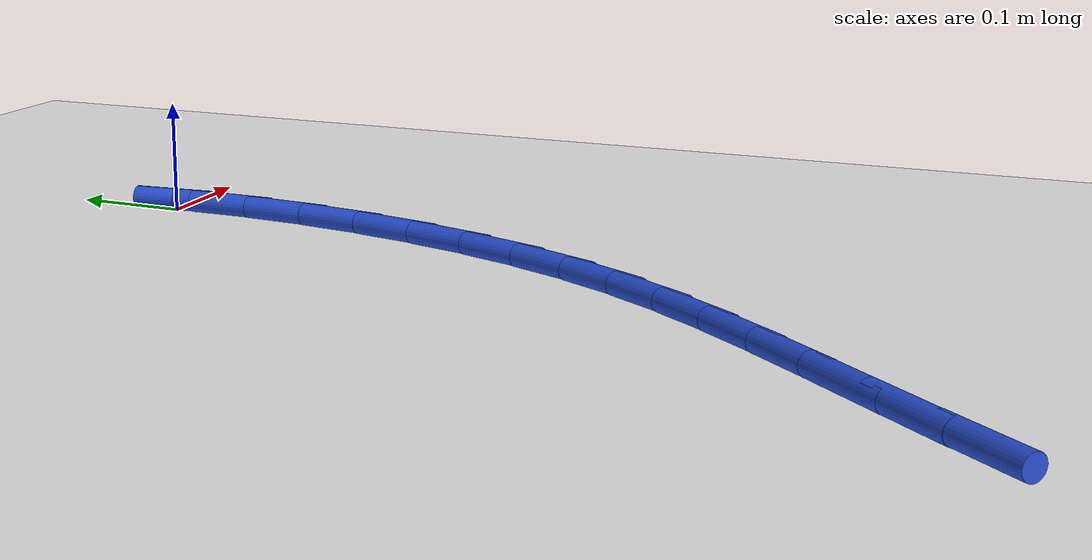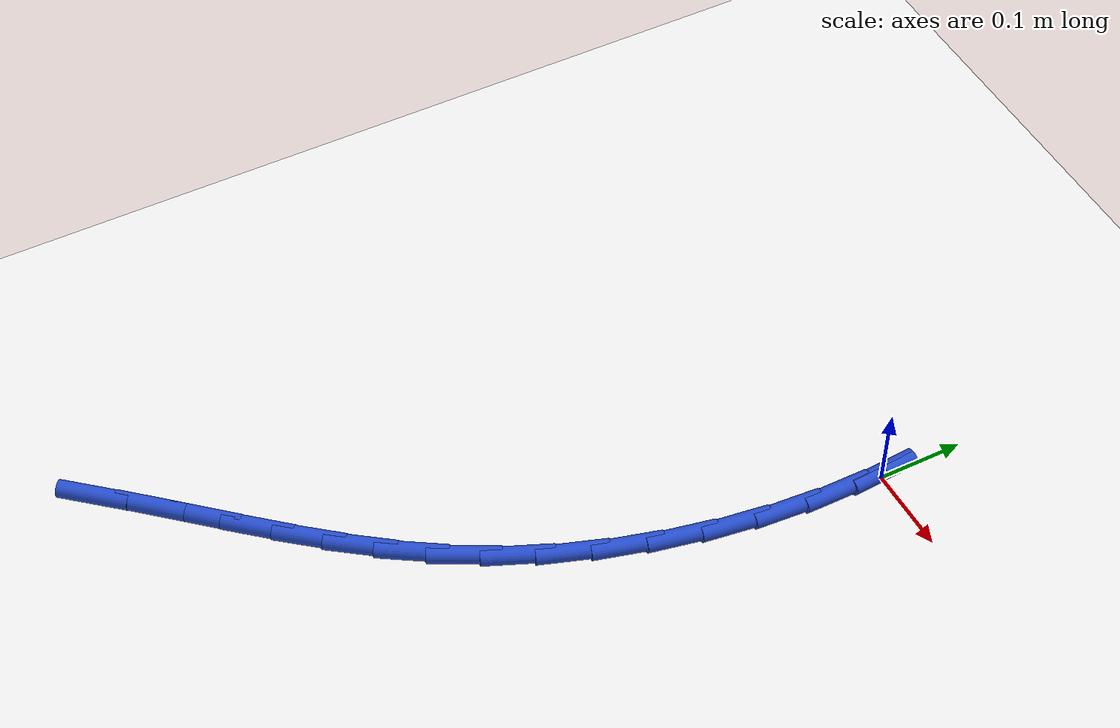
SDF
<sdf version="1.6">
 <world name="default">
  <model name="ground_plane">
   <static>1</static>
   <link name="link">
    <collision name="collision">
     <geometry><plane><normal>0 0 1</normal><size>100 100</size></plane></geometry>
     <surface><friction><ode><mu>100</mu><mu2>50</mu2></ode></friction></surface>
    </collision>
    <visual name="visual">
     <cast_shadows>0</cast_shadows>
     <geometry><plane><normal>0 0 1</normal><size>100 100</size></plane></geometry>
     <material>
      <script><uri>file://media/materials/scripts/gazebo.material</uri><name>Gazebo/WhiteGlow</name></script>
     </material>
    </visual>
   </link>
  </model>
  <model name="line">
   <link name="link_0">
    <pose>4.5102810375396984e-17 -6.938893903907228e-17 0.01 0 1.57 -1.5004712339174642</pose>
    <collision name="collision">
     <geometry><cylinder><radius>0.01</radius><length>0.08</length></cylinder></geometry>
    </collision>
    <visual name="visual">
     <material>
      <script><name>Gazebo/Blue</name><uri>file://media/materials/scripts/gazebo.material</uri></script>
     </material>
     <geometry><cylinder><radius>0.01</radius><length>0.08</length></cylinder></geometry>
    </visual>
   </link>
   <link name="link_125">
    <pose>-0.3640921591071365 -0.7668333367772391 0.01 0 1.57 0.862621307510708</pose>
    <collision name="collision">
     <geometry><cylinder><radius>0.01</radius><length>0.08</length></cylinder></geometry>
    </collision>
    <visual name="visual">
     <material>
      <script><name>Gazebo/Blue</name><uri>file://media/materials/scripts/gazebo.material</uri></script>
     </material>
     <geometry><cylinder><radius>0.01</radius><length>0.08</length></cylinder></geometry>
    </visual>
   </link>
   <link name="link_126">
    <pose>-0.32234891993106174 -0.7180883919693155 0.01 0 1.57 0.8463050386084112</pose>
    <collision name="collision">
     <geometry><cylinder><radius>0.01</radius><length>0.08</length></cylinder></geometry>
    </collision>
    <visual name="visual">
     <material>
      <script><name>Gazebo/Blue</name><uri>file://media/materials/scripts/gazebo.material</uri></script>
     </material>
     <geometry><cylinder><radius>0.01</radius><length>0.08</length></cylinder></geometry>
    </visual>
   </link>
   <link name="link_127">
    <pose>-0.28179569084146905 -0.6722678942303454 0.01 0 1.57 0.8443819533007817</pose>
    <collision name="collision">
     <geometry><cylinder><radius>0.01</radius><length>0.08</length></cylinder></geometry>
    </collision>
    <visual name="visual">
     <material>
      <script><name>Gazebo/Blue</name><uri>file://media/materials/scripts/gazebo.material</uri></script>
     </material>
     <geometry><cylinder><radius>0.01</radius><length>0.08</length></cylinder></geometry>
    </visual>
   </link>
   <link name="link_128">
    <pose>-0.2427706056374013 -0.6283445122103966 0.01 0 1.57 0.8587560472543636</pose>
    <collision name="collision">
     <geometry><cylinder><radius>0.01</radius><length>0.08</length></cylinder></geometry>
    </collision>
    <visual name="visual">
     <material>
      <script><name>Gazebo/Blue</name><uri>file://media/materials/scripts/gazebo.material</uri></script>
     </material>
     <geometry><cylinder><radius>0.01</radius><length>0.08</length></cylinder></geometry>
    </visual>
   </link>
   <link name="link_129">
    <pose>-0.20561179811790167 -0.5852909145595374 0.01 0 1.57 0.8906394605105759</pose>
    <collision name="collision">
     <geometry><cylinder><radius>0.01</radius><length>0.08</length></cylinder></geometry>
    </collision>
    <visual name="visual">
     <material>
      <script><name>Gazebo/Blue</name><uri>file://media/materials/scripts/gazebo.material</uri></script>
     </material>
     <geometry><cylinder><radius>0.01</radius><length>0.08</length></cylinder></geometry>
    </visual>
   </link>
   <link name="link_130">
    <pose>-0.17065740208201358 -0.5420797699278367 0.01 0 1.57 0.9401781034439678</pose>
    <collision name="collision">
     <geometry><cylinder><radius>0.01</radius><length>0.08</length></cylinder></geometry>
    </collision>
    <visual name="visual">
     <material>
      <script><name>Gazebo/Blue</name><uri>file://media/materials/scripts/gazebo.material</uri></script>
     </material>
     <geometry><cylinder><radius>0.01</radius><length>0.08</length></cylinder></geometry>
    </visual>
   </link>
   <link name="link_131">
    <pose>-0.13824555132877966 -0.497683746965362 0.01 0 1.57 1.0060336384114086</pose>
    <collision name="collision">
     <geometry><cylinder><radius>0.01</radius><length>0.08</length></cylinder></geometry>
    </collision>
    <visual name="visual">
     <material>
      <script><name>Gazebo/Blue</name><uri>file://media/materials/scripts/gazebo.material</uri></script>
     </material>
     <geometry><cylinder><radius>0.01</radius><length>0.08</length></cylinder></geometry>
    </visual>
   </link>
   <link name="link_132">
    <pose>-0.10871437965724434 -0.45107551432218335 0.01 0 1.57 1.0843301289852194</pose>
    <collision name="collision">
     <geometry><cylinder><radius>0.01</radius><length>0.08</length></cylinder></geometry>
    </collision>
    <visual name="visual">
     <material>
      <script><name>Gazebo/Blue</name><uri>file://media/materials/scripts/gazebo.material</uri></script>
     </material>
     <geometry><cylinder><radius>0.01</radius><length>0.08</length></cylinder></geometry>
    </visual>
   </link>
   <link name="link_133">
    <pose>-0.08239189456936918 -0.401303154720913 0.01 0 1.57 1.1623692417068021</pose>
    <collision name="collision">
     <geometry><cylinder><radius>0.01</radius><length>0.08</length></cylinder></geometry>
    </collision>
    <visual name="visual">
     <material>
      <script><name>Gazebo/Blue</name><uri>file://media/materials/scripts/gazebo.material</uri></script>
     </material>
     <geometry><cylinder><radius>0.01</radius><length>0.08</length></cylinder></geometry>
    </visual>
   </link>
   <link name="link_134">
    <pose>-0.05947939403357757 -0.3483584010534023 0.01 0 1.57 1.234630278473538</pose>
    <collision name="collision">
     <geometry><cylinder><radius>0.01</radius><length>0.08</length></cylinder></geometry>
    </collision>
    <visual name="visual">
     <material>
      <script><name>Gazebo/Blue</name><uri>file://media/materials/scripts/gazebo.material</uri></script>
     </material>
     <geometry><cylinder><radius>0.01</radius><length>0.08</length></cylinder></geometry>
    </visual>
   </link>
   <link name="link_135">
    <pose>-0.040091945500515584 -0.2928751750067823 0.01 0 1.57 1.302904493142721</pose>
    <collision name="collision">
     <geometry><cylinder><radius>0.01</radius><length>0.08</length></cylinder></geometry>
    </collision>
    <visual name="visual">
     <material>
      <script><name>Gazebo/Blue</name><uri>file://media/materials/scripts/gazebo.material</uri></script>
     </material>
     <geometry><cylinder><radius>0.01</radius><length>0.08</length></cylinder></geometry>
    </visual>
   </link>
   <link name="link_136">
    <pose>-0.02434296374515082 -0.23549970632142447 0.01 0 1.57 1.3689301337485027</pose>
    <collision name="collision">
     <geometry><cylinder><radius>0.01</radius><length>0.08</length></cylinder></geometry>
    </collision>
    <visual name="visual">
     <material>
      <script><name>Gazebo/Blue</name><uri>file://media/materials/scripts/gazebo.material</uri></script>
     </material>
     <geometry><cylinder><radius>0.01</radius><length>0.08</length></cylinder></geometry>
    </visual>
   </link>
   <link name="link_137">
    <pose>-0.012345863542449913 -0.17687822473769768 0.01 0 1.57 1.4343374556465205</pose>
    <collision name="collision">
     <geometry><cylinder><radius>0.01</radius><length>0.08</length></cylinder></geometry>
    </collision>
    <visual name="visual">
     <material>
      <script><name>Gazebo/Blue</name><uri>file://media/materials/scripts/gazebo.material</uri></script>
     </material>
     <geometry><cylinder><radius>0.01</radius><length>0.08</length></cylinder></geometry>
    </visual>
   </link>
   <link name="link_138">
    <pose>-0.0042140596673798094 -0.11765695999597167 0.01 0 1.57 1.5007277740193266</pose>
    <collision name="collision">
     <geometry><cylinder><radius>0.01</radius><length>0.08</length></cylinder></geometry>
    </collision>
    <visual name="visual">
     <material>
      <script><name>Gazebo/Blue</name><uri>file://media/materials/scripts/gazebo.material</uri></script>
     </material>
     <geometry><cylinder><radius>0.01</radius><length>0.08</length></cylinder></geometry>
    </visual>
   </link>
   <link name="link_139">
    <pose>-6.0966894907487496e-05 -0.058482141836616125 0.01 0 1.57 1.5697538397910515</pose>
    <collision name="collision">
     <geometry><cylinder><radius>0.01</radius><length>0.08</length></cylinder></geometry>
    </collision>
    <visual name="visual">
     <material>
      <script><name>Gazebo/Blue</name><uri>file://media/materials/scripts/gazebo.material</uri></script>
     </material>
     <geometry><cylinder><radius>0.01</radius><length>0.08</length></cylinder></geometry>
    </visual>
   </link>
   <link name="link_140">
    <pose>5.898059818321144e-17 1.3877787807814457e-17 0.01 0 1.57 -1.4983935481771544</pose>
    <collision name="collision">
     <geometry><cylinder><radius>0.01</radius><length>0.08</length></cylinder></geometry>
    </collision>
    <visual name="visual">
     <material>
      <script><name>Gazebo/Blue</name><uri>file://media/materials/scripts/gazebo.material</uri></script>
     </material>
     <geometry><cylinder><radius>0.01</radius><length>0.08</length></cylinder></geometry>
    </visual>
   </link>
  </model>
 </world>
</sdf>
